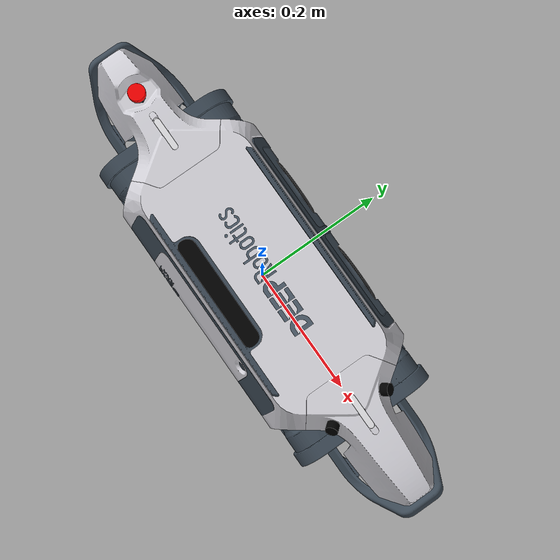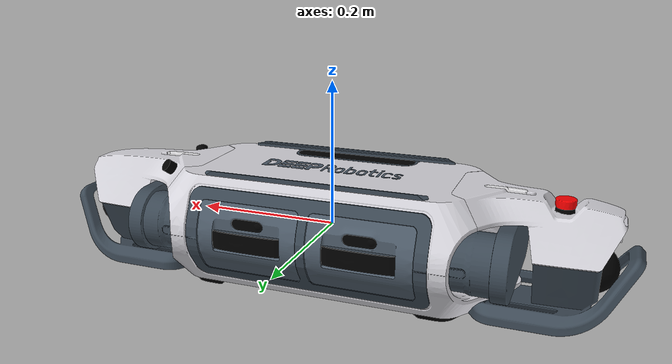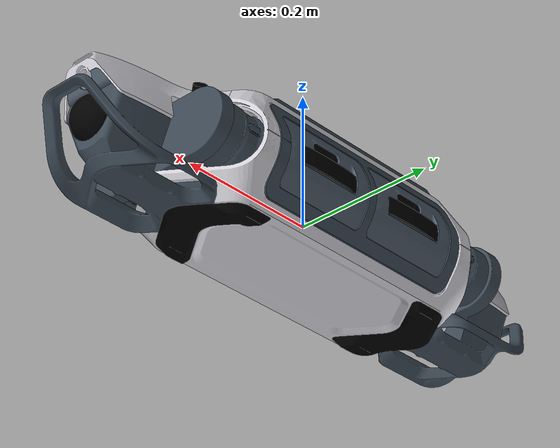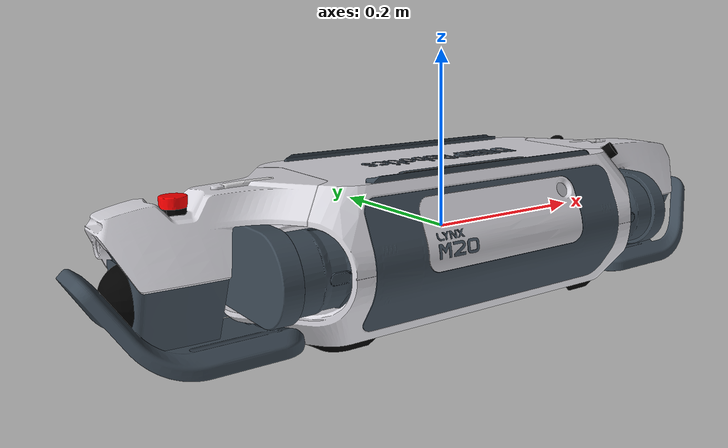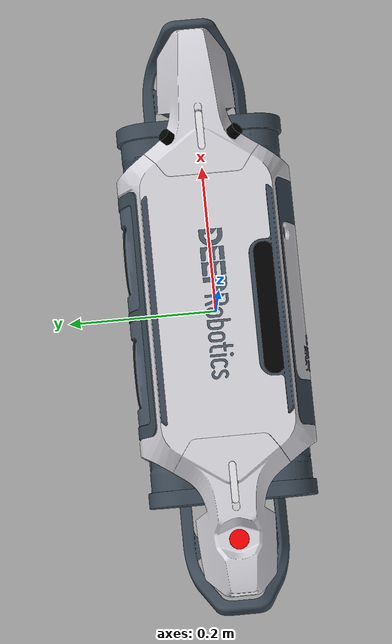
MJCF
<mujoco model="base_link">
  <default>
    <default class="visual">
      <geom group="2" type="mesh" contype="0" conaffinity="0"/>
    </default>
    <default class="collision">
      <geom group="3" type="mesh"/>
    </default>
  </default>
  <asset>
    <material name="Material-7011塑胶" specular="0.5" shininess="0.25" rgba="0.309804 0.364706 0.419608 1.000000"/>
    <material name="Material-7011塑胶.001" specular="0.5" shininess="0.25" rgba="0.309804 0.364706 0.419608 1.000000"/>
    <material name="Material-7011塑胶.002" specular="0.5" shininess="0.25" rgba="0.309804 0.364706 0.419608 1.000000"/>
    <material name="Material-7011塑胶.003" specular="0.5" shininess="0.25" rgba="0.309804 0.364706 0.419608 1.000000"/>
    <material name="Material-7011油漆" specular="0.5" shininess="0.25" rgba="0.309804 0.364706 0.419608 1.000000"/>
    <material name="Material-7011油漆.001" specular="0.5" shininess="0.25" rgba="0.309804 0.364706 0.419608 1.000000"/>
    <material name="Material-7011油漆.002" specular="0.5" shininess="0.25" rgba="0.309804 0.364706 0.419608 1.000000"/>
    <material name="Material-7011油漆.003" specular="0.5" shininess="0.25" rgba="0.309804 0.364706 0.419608 1.000000"/>
    <material name="Material-7011油漆.004" specular="0.5" shininess="0.25" rgba="0.309804 0.364706 0.419608 1.000000"/>
    <material name="Material-7011油漆.005" specular="0.5" shininess="0.25" rgba="0.309804 0.364706 0.419608 1.000000"/>
    <material name="Material-7011油漆.006" specular="0.5" shininess="0.25" rgba="0.309804 0.364706 0.419608 1.000000"/>
    <material name="Material-7011油漆.007" specular="0.5" shininess="0.25" rgba="0.309804 0.364706 0.419608 1.000000"/>
    <material name="Material-7011油漆.008" specular="0.5" shininess="0.25" rgba="0.309804 0.364706 0.419608 1.000000"/>
    <material name="Material-7011油漆.009" specular="0.5" shininess="0.25" rgba="0.309804 0.364706 0.419608 1.000000"/>
    <material name="Material-7011油漆.010" specular="0.5" shininess="0.25" rgba="0.309804 0.364706 0.419608 1.000000"/>
    <material name="Material-7011油漆.011" specular="0.5" shininess="0.25" rgba="0.309804 0.364706 0.419608 1.000000"/>
    <material name="Material-7011油漆.012" specular="0.5" shininess="0.25" rgba="0.309804 0.364706 0.419608 1.000000"/>
    <material name="Material-7011油漆.013" specular="0.5" shininess="0.25" rgba="0.309804 0.364706 0.419608 1.000000"/>
    <material name="Material-7011油漆.014" specular="0.5" shininess="0.25" rgba="0.309804 0.364706 0.419608 1.000000"/>
    <material name="Material-7011油漆.015" specular="0.5" shininess="0.25" rgba="0.309804 0.364706 0.419608 1.000000"/>
    <material name="Material-7011油漆.016" specular="0.5" shininess="0.25" rgba="0.309804 0.364706 0.419608 1.000000"/>
    <material name="Material-7011油漆.017" specular="0.5" shininess="0.25" rgba="0.309804 0.364706 0.419608 1.000000"/>
    <material name="Material-7011油漆.018" specular="0.5" shininess="0.25" rgba="0.309804 0.364706 0.419608 1.000000"/>
    <material name="Material-7011油漆.019" specular="0.5" shininess="0.25" rgba="0.309804 0.364706 0.419608 1.000000"/>
    <material name="Material-7011油漆.020" specular="0.5" shininess="0.25" rgba="0.309804 0.364706 0.419608 1.000000"/>
    <material name="Material-7011油漆.021" specular="0.5" shininess="0.25" rgba="0.309804 0.364706 0.419608 1.000000"/>
    <material name="Material-7011油漆.022" specular="0.5" shininess="0.25" rgba="0.309804 0.364706 0.419608 1.000000"/>
    <material name="Material-7011油漆.023" specular="0.5" shininess="0.25" rgba="0.309804 0.364706 0.419608 1.000000"/>
    <material name="Material-7024油漆" specular="0.5" shininess="0.25" rgba="0.239216 0.290196 0.337255 1.000000"/>
    <material name="Material-7024油漆.001" specular="0.5" shininess="0.25" rgba="0.239216 0.290196 0.337255 1.000000"/>
    <material name="Material-7024油漆.002" specular="0.5" shininess="0.25" rgba="0.239216 0.290196 0.337255 1.000000"/>
    <material name="Material-7024油漆.003" specular="0.5" shininess="0.25" rgba="0.239216 0.290196 0.337255 1.000000"/>
    <material name="Material-7024油漆.004" specular="0.5" shininess="0.25" rgba="0.239216 0.290196 0.337255 1.000000"/>
    <material name="Material-7024油漆.005" specular="0.5" shininess="0.25" rgba="0.239216 0.290196 0.337255 1.000000"/>
    <material name="Material-7024油漆.006" specular="0.5" shininess="0.25" rgba="0.239216 0.290196 0.337255 1.000000"/>
    <material name="Material-7024油漆.007" specular="0.5" shininess="0.25" rgba="0.239216 0.290196 0.337255 1.000000"/>
    <material name="Material-7024油漆.008" specular="0.5" shininess="0.25" rgba="0.239216 0.290196 0.337255 1.000000"/>
    <material name="Material-7024油漆.009" specular="0.5" shininess="0.25" rgba="0.239216 0.290196 0.337255 1.000000"/>
    <material name="Material-7024油漆.010" specular="0.5" shininess="0.25" rgba="0.239216 0.290196 0.337255 1.000000"/>
    <material name="Material-7024油漆.011" specular="0.5" shininess="0.25" rgba="0.239216 0.290196 0.337255 1.000000"/>
    <material name="Material-7024油漆.012" specular="0.5" shininess="0.25" rgba="0.239216 0.290196 0.337255 1.000000"/>
    <material name="Material-塑胶" specular="0.5" shininess="0.25" rgba="0.000000 0.000000 0.000000 1.000000"/>
    <material name="Material-塑胶.001" specular="0.5" shininess="0.25" rgba="0.000000 0.000000 0.000000 1.000000"/>
    <material name="Material-塑胶__1_" specular="0.5" shininess="0.25" rgba="1.000000 1.000000 1.000000 0.610000"/>
    <material name="Material-塑胶__1_.001" specular="0.5" shininess="0.25" rgba="1.000000 1.000000 1.000000 0.610000"/>
    <material name="Material-塑胶__2_" specular="0.5" shininess="0.25" rgba="0.000000 0.000000 0.000000 1.000000"/>
    <material name="Material-塑胶__2_.001" specular="0.5" shininess="0.25" rgba="0.000000 0.000000 0.000000 1.000000"/>
    <material name="Material-塑胶__2_.002" specular="0.5" shininess="0.25" rgba="0.000000 0.000000 0.000000 1.000000"/>
    <material name="Material-塑胶__2_.003" specular="0.5" shininess="0.25" rgba="0.000000 0.000000 0.000000 1.000000"/>
    <material name="Material-塑胶__3_" specular="0.5" shininess="0.25" rgba="0.854902 0.850980 0.878431 1.000000"/>
    <material name="Material-塑胶__3_.001" specular="0.5" shininess="0.25" rgba="0.854902 0.850980 0.878431 1.000000"/>
    <material name="Material-塑胶__3_.002" specular="0.5" shininess="0.25" rgba="0.854902 0.850980 0.878431 1.000000"/>
    <material name="Material-塑胶__3_.003" specular="0.5" shininess="0.25" rgba="0.854902 0.850980 0.878431 1.000000"/>
    <material name="Material-塑胶__4_" specular="0.5" shininess="0.25" rgba="1.000000 0.000000 0.000000 1.000000"/>
    <material name="Material-塑胶__7_" specular="0.5" shininess="0.25" rgba="0.000000 0.000000 0.000000 1.000000"/>
    <material name="Material-塑胶__7_.001" specular="0.5" shininess="0.25" rgba="0.000000 0.000000 0.000000 1.000000"/>
    <material name="Material-塑胶__导入的_" specular="0.5" shininess="0.25" rgba="0.000000 0.000000 0.000000 1.000000"/>
    <material name="Material-塑胶__导入的_.001" specular="0.5" shininess="0.25" rgba="0.000000 0.000000 0.000000 1.000000"/>
    <material name="Material-塑胶__导入的_.002" specular="0.5" shininess="0.25" rgba="0.000000 0.000000 0.000000 1.000000"/>
    <material name="Material-金属__1_" specular="0.5" shininess="0.25" rgba="0.000000 0.000000 0.000000 1.000000"/>
    <mesh file="base_link_0.obj"/>
    <mesh file="base_link_1.obj"/>
    <mesh file="base_link_2.obj"/>
    <mesh file="base_link_3.obj"/>
    <mesh file="base_link_4.obj"/>
    <mesh file="base_link_5.obj"/>
    <mesh file="base_link_6.obj"/>
    <mesh file="base_link_7.obj"/>
    <mesh file="base_link_8.obj"/>
    <mesh file="base_link_9.obj"/>
    <mesh file="base_link_10.obj"/>
    <mesh file="base_link_11.obj"/>
    <mesh file="base_link_12.obj"/>
    <mesh file="base_link_13.obj"/>
    <mesh file="base_link_14.obj"/>
    <mesh file="base_link_15.obj"/>
    <mesh file="base_link_16.obj"/>
    <mesh file="base_link_17.obj"/>
    <mesh file="base_link_18.obj"/>
    <mesh file="base_link_19.obj"/>
    <mesh file="base_link_20.obj"/>
    <mesh file="base_link_21.obj"/>
    <mesh file="base_link_22.obj"/>
    <mesh file="base_link_23.obj"/>
    <mesh file="base_link_24.obj"/>
    <mesh file="base_link_25.obj"/>
    <mesh file="base_link_26.obj"/>
    <mesh file="base_link_27.obj"/>
    <mesh file="base_link_28.obj"/>
    <mesh file="base_link_29.obj"/>
    <mesh file="base_link_30.obj"/>
    <mesh file="base_link_31.obj"/>
    <mesh file="base_link_32.obj"/>
    <mesh file="base_link_33.obj"/>
    <mesh file="base_link_34.obj"/>
    <mesh file="base_link_35.obj"/>
    <mesh file="base_link_36.obj"/>
    <mesh file="base_link_37.obj"/>
    <mesh file="base_link_38.obj"/>
    <mesh file="base_link_39.obj"/>
    <mesh file="base_link_40.obj"/>
    <mesh file="base_link_41.obj"/>
    <mesh file="base_link_42.obj"/>
    <mesh file="base_link_43.obj"/>
    <mesh file="base_link_44.obj"/>
    <mesh file="base_link_45.obj"/>
    <mesh file="base_link_46.obj"/>
    <mesh file="base_link_47.obj"/>
    <mesh file="base_link_48.obj"/>
    <mesh file="base_link_49.obj"/>
    <mesh file="base_link_50.obj"/>
    <mesh file="base_link_51.obj"/>
    <mesh file="base_link_52.obj"/>
    <mesh file="base_link_53.obj"/>
    <mesh file="base_link_54.obj"/>
    <mesh file="base_link_55.obj"/>
    <mesh file="base_link_56.obj"/>
    <mesh file="base_link_57.obj"/>
    <mesh file="base_link_58.obj"/>
    <mesh file="base_link_59.obj"/>
  </asset>
  <worldbody>
    <body name="base_link">
      <geom mesh="base_link_0" material="Material-7024油漆.012" class="visual"/>
      <geom mesh="base_link_1" material="Material-7024油漆.011" class="visual"/>
      <geom mesh="base_link_2" material="Material-塑胶__7_.001" class="visual"/>
      <geom mesh="base_link_3" material="Material-塑胶__3_.003" class="visual"/>
      <geom mesh="base_link_4" material="Material-7024油漆.010" class="visual"/>
      <geom mesh="base_link_5" material="Material-7024油漆.009" class="visual"/>
      <geom mesh="base_link_6" material="Material-7024油漆.008" class="visual"/>
      <geom mesh="base_link_7" material="Material-7024油漆.007" class="visual"/>
      <geom mesh="base_link_8" material="Material-7011塑胶.003" class="visual"/>
      <geom mesh="base_link_9" material="Material-7011塑胶.002" class="visual"/>
      <geom mesh="base_link_10" material="Material-7024油漆.006" class="visual"/>
      <geom mesh="base_link_11" material="Material-7024油漆.005" class="visual"/>
      <geom mesh="base_link_12" material="Material-7024油漆.004" class="visual"/>
      <geom mesh="base_link_13" material="Material-塑胶__3_.002" class="visual"/>
      <geom mesh="base_link_14" material="Material-塑胶__导入的_.002" class="visual"/>
      <geom mesh="base_link_15" material="Material-塑胶__导入的_.001" class="visual"/>
      <geom mesh="base_link_16" material="Material-7024油漆.003" class="visual"/>
      <geom mesh="base_link_17" material="Material-塑胶__3_.001" class="visual"/>
      <geom mesh="base_link_18" material="Material-塑胶__1_.001" class="visual"/>
      <geom mesh="base_link_19" material="Material-金属__1_" class="visual"/>
      <geom mesh="base_link_20" material="Material-塑胶__1_" class="visual"/>
      <geom mesh="base_link_21" material="Material-塑胶__7_" class="visual"/>
      <geom mesh="base_link_22" material="Material-塑胶__2_.003" class="visual"/>
      <geom mesh="base_link_23" material="Material-塑胶__2_.002" class="visual"/>
      <geom mesh="base_link_24" material="Material-7011塑胶.001" class="visual"/>
      <geom mesh="base_link_25" material="Material-7011塑胶" class="visual"/>
      <geom mesh="base_link_26" material="Material-塑胶.001" class="visual"/>
      <geom mesh="base_link_27" material="Material-塑胶" class="visual"/>
      <geom mesh="base_link_28" material="Material-7024油漆.002" class="visual"/>
      <geom mesh="base_link_29" material="Material-塑胶__4_" class="visual"/>
      <geom mesh="base_link_30" material="Material-塑胶__3_" class="visual"/>
      <geom mesh="base_link_31" material="Material-7024油漆.001" class="visual"/>
      <geom mesh="base_link_32" material="Material-7024油漆" class="visual"/>
      <geom mesh="base_link_33" material="Material-塑胶__导入的_" class="visual"/>
      <geom mesh="base_link_34" material="Material-7011油漆.023" class="visual"/>
      <geom mesh="base_link_35" material="Material-7011油漆.022" class="visual"/>
      <geom mesh="base_link_36" material="Material-7011油漆.021" class="visual"/>
      <geom mesh="base_link_37" material="Material-7011油漆.020" class="visual"/>
      <geom mesh="base_link_38" material="Material-7011油漆.019" class="visual"/>
      <geom mesh="base_link_39" material="Material-7011油漆.018" class="visual"/>
      <geom mesh="base_link_40" material="Material-7011油漆.017" class="visual"/>
      <geom mesh="base_link_41" material="Material-7011油漆.016" class="visual"/>
      <geom mesh="base_link_42" material="Material-7011油漆.015" class="visual"/>
      <geom mesh="base_link_43" material="Material-7011油漆.014" class="visual"/>
      <geom mesh="base_link_44" material="Material-7011油漆.013" class="visual"/>
      <geom mesh="base_link_45" material="Material-7011油漆.012" class="visual"/>
      <geom mesh="base_link_46" material="Material-7011油漆.011" class="visual"/>
      <geom mesh="base_link_47" material="Material-7011油漆.010" class="visual"/>
      <geom mesh="base_link_48" material="Material-7011油漆.009" class="visual"/>
      <geom mesh="base_link_49" material="Material-7011油漆.008" class="visual"/>
      <geom mesh="base_link_50" material="Material-7011油漆.007" class="visual"/>
      <geom mesh="base_link_51" material="Material-7011油漆.006" class="visual"/>
      <geom mesh="base_link_52" material="Material-7011油漆.005" class="visual"/>
      <geom mesh="base_link_53" material="Material-7011油漆.004" class="visual"/>
      <geom mesh="base_link_54" material="Material-7011油漆.003" class="visual"/>
      <geom mesh="base_link_55" material="Material-7011油漆.002" class="visual"/>
      <geom mesh="base_link_56" material="Material-7011油漆.001" class="visual"/>
      <geom mesh="base_link_57" material="Material-7011油漆" class="visual"/>
      <geom mesh="base_link_58" material="Material-塑胶__2_.001" class="visual"/>
      <geom mesh="base_link_59" material="Material-塑胶__2_" class="visual"/>
      <geom mesh="base_link_0" class="collision"/>
      <geom mesh="base_link_1" class="collision"/>
      <geom mesh="base_link_2" class="collision"/>
      <geom mesh="base_link_3" class="collision"/>
      <geom mesh="base_link_4" class="collision"/>
      <geom mesh="base_link_5" class="collision"/>
      <geom mesh="base_link_6" class="collision"/>
      <geom mesh="base_link_7" class="collision"/>
      <geom mesh="base_link_8" class="collision"/>
      <geom mesh="base_link_9" class="collision"/>
      <geom mesh="base_link_10" class="collision"/>
      <geom mesh="base_link_11" class="collision"/>
      <geom mesh="base_link_12" class="collision"/>
      <geom mesh="base_link_13" class="collision"/>
      <geom mesh="base_link_14" class="collision"/>
      <geom mesh="base_link_15" class="collision"/>
      <geom mesh="base_link_16" class="collision"/>
      <geom mesh="base_link_17" class="collision"/>
      <geom mesh="base_link_18" class="collision"/>
      <geom mesh="base_link_19" class="collision"/>
      <geom mesh="base_link_20" class="collision"/>
      <geom mesh="base_link_21" class="collision"/>
      <geom mesh="base_link_22" class="collision"/>
      <geom mesh="base_link_23" class="collision"/>
      <geom mesh="base_link_24" class="collision"/>
      <geom mesh="base_link_25" class="collision"/>
      <geom mesh="base_link_26" class="collision"/>
      <geom mesh="base_link_27" class="collision"/>
      <geom mesh="base_link_28" class="collision"/>
      <geom mesh="base_link_29" class="collision"/>
      <geom mesh="base_link_30" class="collision"/>
      <geom mesh="base_link_31" class="collision"/>
      <geom mesh="base_link_32" class="collision"/>
      <geom mesh="base_link_33" class="collision"/>
      <geom mesh="base_link_34" class="collision"/>
      <geom mesh="base_link_35" class="collision"/>
      <geom mesh="base_link_36" class="collision"/>
      <geom mesh="base_link_37" class="collision"/>
      <geom mesh="base_link_38" class="collision"/>
      <geom mesh="base_link_39" class="collision"/>
      <geom mesh="base_link_40" class="collision"/>
      <geom mesh="base_link_41" class="collision"/>
      <geom mesh="base_link_42" class="collision"/>
      <geom mesh="base_link_43" class="collision"/>
      <geom mesh="base_link_44" class="collision"/>
      <geom mesh="base_link_45" class="collision"/>
      <geom mesh="base_link_46" class="collision"/>
      <geom mesh="base_link_47" class="collision"/>
      <geom mesh="base_link_48" class="collision"/>
      <geom mesh="base_link_49" class="collision"/>
      <geom mesh="base_link_50" class="collision"/>
      <geom mesh="base_link_51" class="collision"/>
      <geom mesh="base_link_52" class="collision"/>
      <geom mesh="base_link_53" class="collision"/>
      <geom mesh="base_link_54" class="collision"/>
      <geom mesh="base_link_55" class="collision"/>
      <geom mesh="base_link_56" class="collision"/>
      <geom mesh="base_link_57" class="collision"/>
      <geom mesh="base_link_58" class="collision"/>
      <geom mesh="base_link_59" class="collision"/>
    </body>
  </worldbody>
</mujoco>
